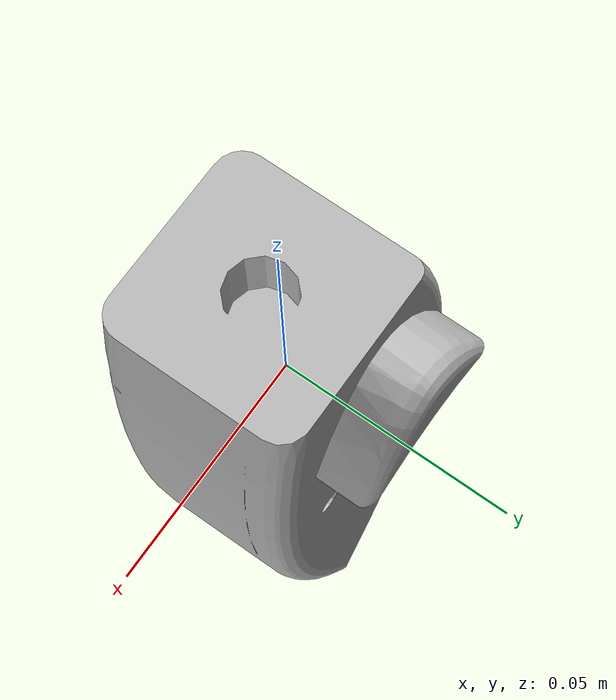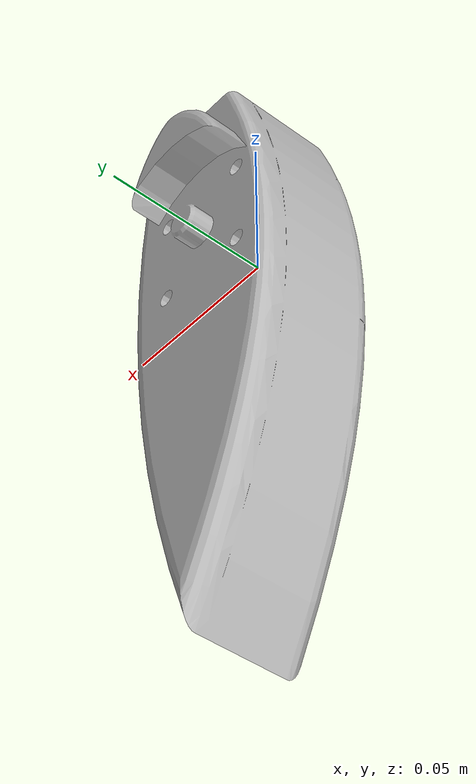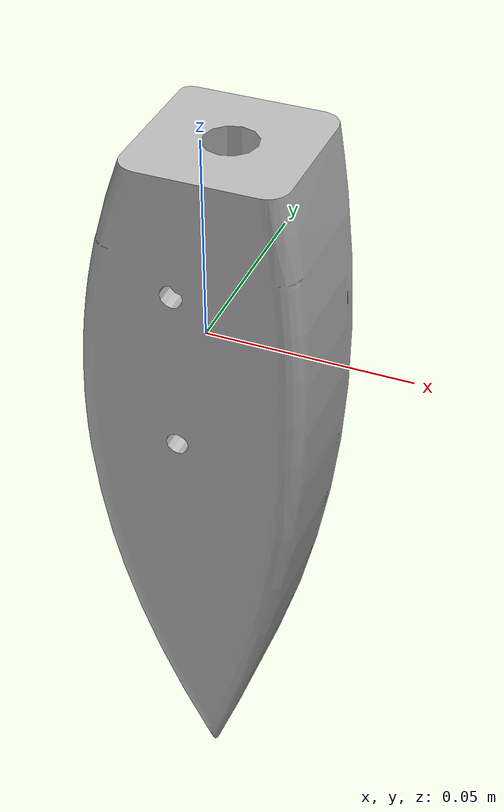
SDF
<sdf version='1.6'>
  <model name='Teste_Rotor_R'>
    <link name='base_link'>
      <pose frame=''>0 0 0 0 -0 0</pose>
      <inertial>
        <pose frame=''>0.002943 0.002363 -0.029197 0 -0 0</pose>
        <mass>0.22018</mass>
        <inertia>
          <ixx>0.00049333</ixx>
          <ixy>5.2898e-07</ixy>
          <ixz>-1.1286e-06</ixz>
          <iyy>0.00049943</iyy>
          <iyz>-1.074e-05</iyz>
          <izz>6.9708e-05</izz>
        </inertia>
      </inertial>
      <collision name='base_link_collision'>
        <pose frame=''>0 0 0 0 -0 0</pose>
        <geometry>
          <mesh>
            <scale>1 1 1</scale>
            <uri>model://Teste_Rotor_R/meshes/base_link.STL</uri>
          </mesh>
        </geometry>
      </collision>
      <visual name='base_link_visual'>
        <pose frame=''>0 0 0 0 -0 0</pose>
        <geometry>
          <mesh>
            <scale>1 1 1</scale>
            <uri>model://Teste_Rotor_R/meshes/base_link.STL</uri>
          </mesh>
        </geometry>
      </visual>
    </link>
  </model>
</sdf>
